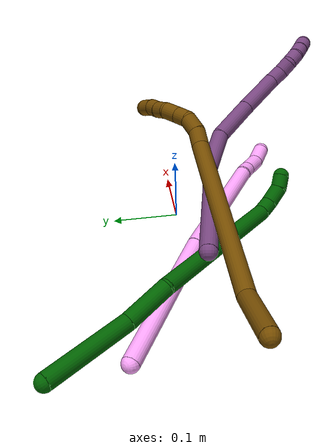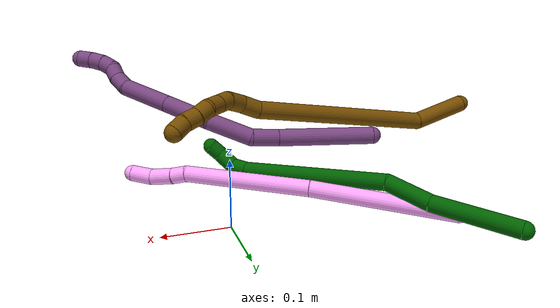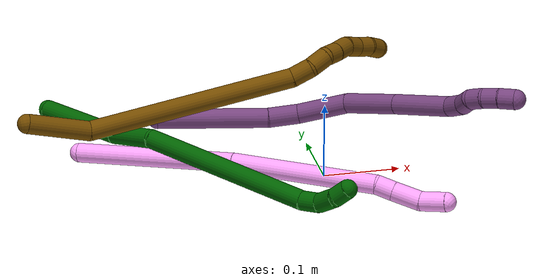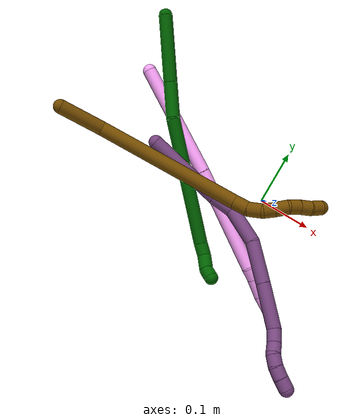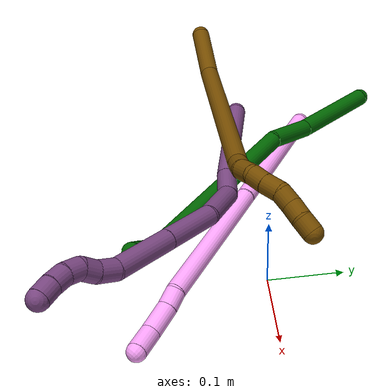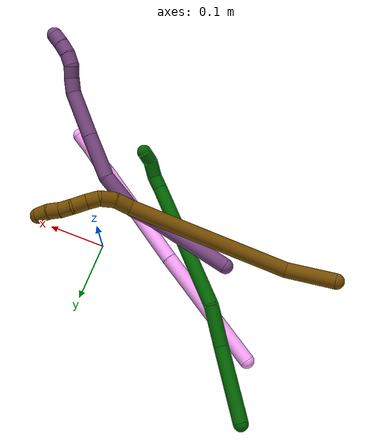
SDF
<sdf version="1.7">
 <world name="default">
  <model name="4">
   <static>0</static>
   <link name="4">
    <collision name="collision-cylinder-e_1_1_4">
     <pose>-0.041923 -0.033245 0.092179 0.346139 -0.404265 -0.071621</pose>
     <geometry><cylinder><radius>0.0125</radius><length>0.213164</length></cylinder></geometry>
     <surface>
      <friction><ode><mu>1.16</mu><mu2>1.16</mu2><slip1>0</slip1><slip2>0</slip2></ode></friction>
      <contact><ode><kp>1e+06</kp><kd>1</kd><max_vel>0</max_vel><min_depth>0.001</min_depth></ode></contact>
     </surface>
    </collision>
    <visual name="visual-cylinder-e_1_1_4">
     <pose>-0.041923 -0.033245 0.092179 0.346139 -0.404265 -0.071621</pose>
     <geometry><cylinder><radius>0.0125</radius><length>0.213164</length></cylinder></geometry>
     <material><ambient>1 0.65098 0.996078 1</ambient></material>
    </visual>
    <collision name="collision-cylinder-e_2_4_5">
     <pose>-0.116999 -0.091418 0.271754 0.277841 -0.349784 -0.049402</pose>
     <geometry><cylinder><radius>0.0125</radius><length>0.19348</length></cylinder></geometry>
     <surface>
      <friction><ode><mu>1.16</mu><mu2>1.16</mu2><slip1>0</slip1><slip2>0</slip2></ode></friction>
      <contact><ode><kp>1e+06</kp><kd>1</kd><max_vel>0</max_vel><min_depth>0.001</min_depth></ode></contact>
     </surface>
    </collision>
    <visual name="visual-cylinder-e_2_4_5">
     <pose>-0.116999 -0.091418 0.271754 0.277841 -0.349784 -0.049402</pose>
     <geometry><cylinder><radius>0.0125</radius><length>0.19348</length></cylinder></geometry>
     <material><ambient>1 0.65098 0.996078 1</ambient></material>
    </visual>
    <collision name="collision-cylinder-e_3_5_6">
     <pose>-0.153729 -0.116319 0.370158 -0.002324 -0.314303 0.000368</pose>
     <geometry><cylinder><radius>0.0125</radius><length>0.023148</length></cylinder></geometry>
     <surface>
      <friction><ode><mu>1.16</mu><mu2>1.16</mu2><slip1>0</slip1><slip2>0</slip2></ode></friction>
      <contact><ode><kp>1e+06</kp><kd>1</kd><max_vel>0</max_vel><min_depth>0.001</min_depth></ode></contact>
     </surface>
    </collision>
    <visual name="visual-cylinder-e_3_5_6">
     <pose>-0.153729 -0.116319 0.370158 -0.002324 -0.314303 0.000368</pose>
     <geometry><cylinder><radius>0.0125</radius><length>0.023148</length></cylinder></geometry>
     <material><ambient>1 0.65098 0.996078 1</ambient></material>
    </visual>
    <collision name="collision-cylinder-e_4_6_7">
     <pose>-0.161975 -0.11807 0.399037 0.099068 -0.254277 -0.012674</pose>
     <geometry><cylinder><radius>0.0125</radius><length>0.037115</length></cylinder></geometry>
     <surface>
      <friction><ode><mu>1.16</mu><mu2>1.16</mu2><slip1>0</slip1><slip2>0</slip2></ode></friction>
      <contact><ode><kp>1e+06</kp><kd>1</kd><max_vel>0</max_vel><min_depth>0.001</min_depth></ode></contact>
     </surface>
    </collision>
    <visual name="visual-cylinder-e_4_6_7">
     <pose>-0.161975 -0.11807 0.399037 0.099068 -0.254277 -0.012674</pose>
     <geometry><cylinder><radius>0.0125</radius><length>0.037115</length></cylinder></geometry>
     <material><ambient>1 0.65098 0.996078 1</ambient></material>
    </visual>
    <collision name="collision-cylinder-e_5_7_2">
     <pose>-0.173451 -0.125393 0.430935 0.376595 -0.424004 -0.081983</pose>
     <geometry><cylinder><radius>0.0125</radius><length>0.033093</length></cylinder></geometry>
     <surface>
      <friction><ode><mu>1.16</mu><mu2>1.16</mu2><slip1>0</slip1><slip2>0</slip2></ode></friction>
      <contact><ode><kp>1e+06</kp><kd>1</kd><max_vel>0</max_vel><min_depth>0.001</min_depth></ode></contact>
     </surface>
    </collision>
    <visual name="visual-cylinder-e_5_7_2">
     <pose>-0.173451 -0.125393 0.430935 0.376595 -0.424004 -0.081983</pose>
     <geometry><cylinder><radius>0.0125</radius><length>0.033093</length></cylinder></geometry>
     <material><ambient>1 0.65098 0.996078 1</ambient></material>
    </visual>
    <collision name="collision-sphere-2">
     <pose>-0.180258 -0.130939 0.444959 0 -0 0</pose>
     <geometry><sphere><radius>0.0125</radius></sphere></geometry>
     <surface>
      <friction><ode><mu>1.16</mu><mu2>1.16</mu2><slip1>0</slip1><slip2>0</slip2></ode></friction>
      <contact><ode><kp>1e+06</kp><kd>1</kd><max_vel>0</max_vel><min_depth>0.001</min_depth></ode></contact>
     </surface>
    </collision>
    <visual name="visual-sphere-2">
     <pose>-0.180258 -0.130939 0.444959 0 -0 0</pose>
     <geometry><sphere><radius>0.0125</radius></sphere></geometry>
     <material><ambient>1 0.65098 0.996078 1</ambient></material>
    </visual>
    <collision name="collision-sphere-7">
     <pose>-0.166644 -0.119846 0.41691 0 -0 0</pose>
     <geometry><sphere><radius>0.0125</radius></sphere></geometry>
     <surface>
      <friction><ode><mu>1.16</mu><mu2>1.16</mu2><slip1>0</slip1><slip2>0</slip2></ode></friction>
      <contact><ode><kp>1e+06</kp><kd>1</kd><max_vel>0</max_vel><min_depth>0.001</min_depth></ode></contact>
     </surface>
    </collision>
    <visual name="visual-sphere-7">
     <pose>-0.166644 -0.119846 0.41691 0 -0 0</pose>
     <geometry><sphere><radius>0.0125</radius></sphere></geometry>
     <material><ambient>1 0.65098 0.996078 1</ambient></material>
    </visual>
    <collision name="collision-sphere-6">
     <pose>-0.157307 -0.116293 0.381165 0 -0 0</pose>
     <geometry><sphere><radius>0.0125</radius></sphere></geometry>
     <surface>
      <friction><ode><mu>1.16</mu><mu2>1.16</mu2><slip1>0</slip1><slip2>0</slip2></ode></friction>
      <contact><ode><kp>1e+06</kp><kd>1</kd><max_vel>0</max_vel><min_depth>0.001</min_depth></ode></contact>
     </surface>
    </collision>
    <visual name="visual-sphere-6">
     <pose>-0.157307 -0.116293 0.381165 0 -0 0</pose>
     <geometry><sphere><radius>0.0125</radius></sphere></geometry>
     <material><ambient>1 0.65098 0.996078 1</ambient></material>
    </visual>
    <collision name="collision-sphere-5">
     <pose>-0.150151 -0.116345 0.359151 0 -0 0</pose>
     <geometry><sphere><radius>0.0125</radius></sphere></geometry>
     <surface>
      <friction><ode><mu>1.16</mu><mu2>1.16</mu2><slip1>0</slip1><slip2>0</slip2></ode></friction>
      <contact><ode><kp>1e+06</kp><kd>1</kd><max_vel>0</max_vel><min_depth>0.001</min_depth></ode></contact>
     </surface>
    </collision>
    <visual name="visual-sphere-5">
     <pose>-0.150151 -0.116345 0.359151 0 -0 0</pose>
     <geometry><sphere><radius>0.0125</radius></sphere></geometry>
     <material><ambient>1 0.65098 0.996078 1</ambient></material>
    </visual>
    <collision name="collision-sphere-1">
     <geometry><sphere><radius>0.0125</radius></sphere></geometry>
     <surface>
      <friction><ode><mu>1.16</mu><mu2>1.16</mu2><slip1>0</slip1><slip2>0</slip2></ode></friction>
      <contact><ode><kp>1e+06</kp><kd>1</kd><max_vel>0</max_vel><min_depth>0.001</min_depth></ode></contact>
     </surface>
    </collision>
    <visual name="visual-sphere-1">
     <geometry><sphere><radius>0.0125</radius></sphere></geometry>
     <material><ambient>1 0.65098 0.996078 1</ambient></material>
    </visual>
    <collision name="collision-sphere-4">
     <pose>-0.083847 -0.06649 0.184358 0 -0 0</pose>
     <geometry><sphere><radius>0.0125</radius></sphere></geometry>
     <surface>
      <friction><ode><mu>1.16</mu><mu2>1.16</mu2><slip1>0</slip1><slip2>0</slip2></ode></friction>
      <contact><ode><kp>1e+06</kp><kd>1</kd><max_vel>0</max_vel><min_depth>0.001</min_depth></ode></contact>
     </surface>
    </collision>
    <visual name="visual-sphere-4">
     <pose>-0.083847 -0.06649 0.184358 0 -0 0</pose>
     <geometry><sphere><radius>0.0125</radius></sphere></geometry>
     <material><ambient>1 0.65098 0.996078 1</ambient></material>
    </visual>
    <inertial>
     <pose>-0.093767 -0.071997 0.219736 0 -0 0</pose>
     <mass>0.5</mass>
     <inertia>
      <ixx>0.001236</ixx>
      <ixy>0</ixy>
      <ixz>0</ixz>
      <iyy>0.001282</iyy>
      <iyz>0</iyz>
      <izz>0.000983</izz>
     </inertia>
    </inertial>
   </link>
   <pose>-0.302845 0.099861 0.018682 -1.90538 0.20326 -2.51459</pose>
  </model>
  <model name="6">
   <static>0</static>
   <link name="6">
    <collision name="collision-cylinder-e_1_1_4">
     <pose>0.046332 -0.025432 -0.033207 2.48802 0.836451 1.83855</pose>
     <geometry><cylinder><radius>0.0125</radius><length>0.124838</length></cylinder></geometry>
     <surface>
      <friction><ode><mu>1.16</mu><mu2>1.16</mu2><slip1>0</slip1><slip2>0</slip2></ode></friction>
      <contact><ode><kp>1e+06</kp><kd>1</kd><max_vel>0</max_vel><min_depth>0.001</min_depth></ode></contact>
     </surface>
    </collision>
    <visual name="visual-cylinder-e_1_1_4">
     <pose>0.046332 -0.025432 -0.033207 2.48802 0.836451 1.83855</pose>
     <geometry><cylinder><radius>0.0125</radius><length>0.124838</length></cylinder></geometry>
     <material><ambient>0 0.392157 0.003922 1</ambient></material>
    </visual>
    <collision name="collision-cylinder-e_2_4_5">
     <pose>0.113178 -0.067398 -0.087817 2.48383 0.648942 1.55628</pose>
     <geometry><cylinder><radius>0.0125</radius><length>0.06789</length></cylinder></geometry>
     <surface>
      <friction><ode><mu>1.16</mu><mu2>1.16</mu2><slip1>0</slip1><slip2>0</slip2></ode></friction>
      <contact><ode><kp>1e+06</kp><kd>1</kd><max_vel>0</max_vel><min_depth>0.001</min_depth></ode></contact>
     </surface>
    </collision>
    <visual name="visual-cylinder-e_2_4_5">
     <pose>0.113178 -0.067398 -0.087817 2.48383 0.648942 1.55628</pose>
     <geometry><cylinder><radius>0.0125</radius><length>0.06789</length></cylinder></geometry>
     <material><ambient>0 0.392157 0.003922 1</ambient></material>
    </visual>
    <collision name="collision-cylinder-e_3_5_6">
     <pose>0.228653 -0.137215 -0.151201 2.23812 0.950504 1.62958</pose>
     <geometry><cylinder><radius>0.0125</radius><length>0.233403</length></cylinder></geometry>
     <surface>
      <friction><ode><mu>1.16</mu><mu2>1.16</mu2><slip1>0</slip1><slip2>0</slip2></ode></friction>
      <contact><ode><kp>1e+06</kp><kd>1</kd><max_vel>0</max_vel><min_depth>0.001</min_depth></ode></contact>
     </surface>
    </collision>
    <visual name="visual-cylinder-e_3_5_6">
     <pose>0.228653 -0.137215 -0.151201 2.23812 0.950504 1.62958</pose>
     <geometry><cylinder><radius>0.0125</radius><length>0.233403</length></cylinder></geometry>
     <material><ambient>0 0.392157 0.003922 1</ambient></material>
    </visual>
    <collision name="collision-cylinder-e_4_6_7">
     <pose>0.331805 -0.19782 -0.198662 2.21322 0.730461 1.30448</pose>
     <geometry><cylinder><radius>0.0125</radius><length>0.024553</length></cylinder></geometry>
     <surface>
      <friction><ode><mu>1.16</mu><mu2>1.16</mu2><slip1>0</slip1><slip2>0</slip2></ode></friction>
      <contact><ode><kp>1e+06</kp><kd>1</kd><max_vel>0</max_vel><min_depth>0.001</min_depth></ode></contact>
     </surface>
    </collision>
    <visual name="visual-cylinder-e_4_6_7">
     <pose>0.331805 -0.19782 -0.198662 2.21322 0.730461 1.30448</pose>
     <geometry><cylinder><radius>0.0125</radius><length>0.024553</length></cylinder></geometry>
     <material><ambient>0 0.392157 0.003922 1</ambient></material>
    </visual>
    <collision name="collision-cylinder-e_5_7_8">
     <pose>0.344359 -0.214117 -0.214551 2.43002 0.307332 0.789828</pose>
     <geometry><cylinder><radius>0.0125</radius><length>0.028841</length></cylinder></geometry>
     <surface>
      <friction><ode><mu>1.16</mu><mu2>1.16</mu2><slip1>0</slip1><slip2>0</slip2></ode></friction>
      <contact><ode><kp>1e+06</kp><kd>1</kd><max_vel>0</max_vel><min_depth>0.001</min_depth></ode></contact>
     </surface>
    </collision>
    <visual name="visual-cylinder-e_5_7_8">
     <pose>0.344359 -0.214117 -0.214551 2.43002 0.307332 0.789828</pose>
     <geometry><cylinder><radius>0.0125</radius><length>0.028841</length></cylinder></geometry>
     <material><ambient>0 0.392157 0.003922 1</ambient></material>
    </visual>
    <collision name="collision-cylinder-e_6_8_2">
     <pose>0.349591 -0.231832 -0.23022 2.11258 0.085096 0.150341</pose>
     <geometry><cylinder><radius>0.0125</radius><length>0.020475</length></cylinder></geometry>
     <surface>
      <friction><ode><mu>1.16</mu><mu2>1.16</mu2><slip1>0</slip1><slip2>0</slip2></ode></friction>
      <contact><ode><kp>1e+06</kp><kd>1</kd><max_vel>0</max_vel><min_depth>0.001</min_depth></ode></contact>
     </surface>
    </collision>
    <visual name="visual-cylinder-e_6_8_2">
     <pose>0.349591 -0.231832 -0.23022 2.11258 0.085096 0.150341</pose>
     <geometry><cylinder><radius>0.0125</radius><length>0.020475</length></cylinder></geometry>
     <material><ambient>0 0.392157 0.003922 1</ambient></material>
    </visual>
    <collision name="collision-sphere-2">
     <pose>0.350462 -0.240572 -0.23548 0 -0 0</pose>
     <geometry><sphere><radius>0.0125</radius></sphere></geometry>
     <surface>
      <friction><ode><mu>1.16</mu><mu2>1.16</mu2><slip1>0</slip1><slip2>0</slip2></ode></friction>
      <contact><ode><kp>1e+06</kp><kd>1</kd><max_vel>0</max_vel><min_depth>0.001</min_depth></ode></contact>
     </surface>
    </collision>
    <visual name="visual-sphere-2">
     <pose>0.350462 -0.240572 -0.23548 0 -0 0</pose>
     <geometry><sphere><radius>0.0125</radius></sphere></geometry>
     <material><ambient>0 0.392157 0.003922 1</ambient></material>
    </visual>
    <collision name="collision-sphere-4">
     <pose>0.092663 -0.050864 -0.066414 0 -0 0</pose>
     <geometry><sphere><radius>0.0125</radius></sphere></geometry>
     <surface>
      <friction><ode><mu>1.16</mu><mu2>1.16</mu2><slip1>0</slip1><slip2>0</slip2></ode></friction>
      <contact><ode><kp>1e+06</kp><kd>1</kd><max_vel>0</max_vel><min_depth>0.001</min_depth></ode></contact>
     </surface>
    </collision>
    <visual name="visual-sphere-4">
     <pose>0.092663 -0.050864 -0.066414 0 -0 0</pose>
     <geometry><sphere><radius>0.0125</radius></sphere></geometry>
     <material><ambient>0 0.392157 0.003922 1</ambient></material>
    </visual>
    <collision name="collision-sphere-1">
     <geometry><sphere><radius>0.0125</radius></sphere></geometry>
     <surface>
      <friction><ode><mu>1.16</mu><mu2>1.16</mu2><slip1>0</slip1><slip2>0</slip2></ode></friction>
      <contact><ode><kp>1e+06</kp><kd>1</kd><max_vel>0</max_vel><min_depth>0.001</min_depth></ode></contact>
     </surface>
    </collision>
    <visual name="visual-sphere-1">
     <geometry><sphere><radius>0.0125</radius></sphere></geometry>
     <material><ambient>0 0.392157 0.003922 1</ambient></material>
    </visual>
    <collision name="collision-sphere-8">
     <pose>0.348721 -0.223093 -0.22496 0 -0 0</pose>
     <geometry><sphere><radius>0.0125</radius></sphere></geometry>
     <surface>
      <friction><ode><mu>1.16</mu><mu2>1.16</mu2><slip1>0</slip1><slip2>0</slip2></ode></friction>
      <contact><ode><kp>1e+06</kp><kd>1</kd><max_vel>0</max_vel><min_depth>0.001</min_depth></ode></contact>
     </surface>
    </collision>
    <visual name="visual-sphere-8">
     <pose>0.348721 -0.223093 -0.22496 0 -0 0</pose>
     <geometry><sphere><radius>0.0125</radius></sphere></geometry>
     <material><ambient>0 0.392157 0.003922 1</ambient></material>
    </visual>
    <collision name="collision-sphere-5">
     <pose>0.133692 -0.083931 -0.109219 0 -0 0</pose>
     <geometry><sphere><radius>0.0125</radius></sphere></geometry>
     <surface>
      <friction><ode><mu>1.16</mu><mu2>1.16</mu2><slip1>0</slip1><slip2>0</slip2></ode></friction>
      <contact><ode><kp>1e+06</kp><kd>1</kd><max_vel>0</max_vel><min_depth>0.001</min_depth></ode></contact>
     </surface>
    </collision>
    <visual name="visual-sphere-5">
     <pose>0.133692 -0.083931 -0.109219 0 -0 0</pose>
     <geometry><sphere><radius>0.0125</radius></sphere></geometry>
     <material><ambient>0 0.392157 0.003922 1</ambient></material>
    </visual>
    <collision name="collision-sphere-6">
     <pose>0.323614 -0.190498 -0.193184 0 -0 0</pose>
     <geometry><sphere><radius>0.0125</radius></sphere></geometry>
     <surface>
      <friction><ode><mu>1.16</mu><mu2>1.16</mu2><slip1>0</slip1><slip2>0</slip2></ode></friction>
      <contact><ode><kp>1e+06</kp><kd>1</kd><max_vel>0</max_vel><min_depth>0.001</min_depth></ode></contact>
     </surface>
    </collision>
    <visual name="visual-sphere-6">
     <pose>0.323614 -0.190498 -0.193184 0 -0 0</pose>
     <geometry><sphere><radius>0.0125</radius></sphere></geometry>
     <material><ambient>0 0.392157 0.003922 1</ambient></material>
    </visual>
    <collision name="collision-sphere-7">
     <pose>0.339996 -0.205141 -0.204141 0 -0 0</pose>
     <geometry><sphere><radius>0.0125</radius></sphere></geometry>
     <surface>
      <friction><ode><mu>1.16</mu><mu2>1.16</mu2><slip1>0</slip1><slip2>0</slip2></ode></friction>
      <contact><ode><kp>1e+06</kp><kd>1</kd><max_vel>0</max_vel><min_depth>0.001</min_depth></ode></contact>
     </surface>
    </collision>
    <visual name="visual-sphere-7">
     <pose>0.339996 -0.205141 -0.204141 0 -0 0</pose>
     <geometry><sphere><radius>0.0125</radius></sphere></geometry>
     <material><ambient>0 0.392157 0.003922 1</ambient></material>
    </visual>
    <inertial>
     <pose>0.184145 -0.111112 -0.122355 0 -0 0</pose>
     <mass>0.5</mass>
     <inertia>
      <ixx>0.00072</ixx>
      <ixy>0</ixy>
      <ixz>0</ixz>
      <iyy>0.001574</iyy>
      <iyz>0</iyz>
      <izz>-0.000457</izz>
     </inertia>
    </inertial>
   </link>
   <pose>-0.327896 0.199985 0.037483 -2.49676 0.70412 -0.964867</pose>
  </model>
  <model name="12">
   <static>0</static>
   <link name="12">
    <collision name="collision-cylinder-e_1_1_4">
     <pose>0.011312 -0.010048 0.037645 0.26083 0.282555 0.037304</pose>
     <geometry><cylinder><radius>0.0125</radius><length>0.081143</length></cylinder></geometry>
     <surface>
      <friction><ode><mu>1.16</mu><mu2>1.16</mu2><slip1>0</slip1><slip2>0</slip2></ode></friction>
      <contact><ode><kp>1e+06</kp><kd>1</kd><max_vel>0</max_vel><min_depth>0.001</min_depth></ode></contact>
     </surface>
    </collision>
    <visual name="visual-cylinder-e_1_1_4">
     <pose>0.011312 -0.010048 0.037645 0.26083 0.282555 0.037304</pose>
     <geometry><cylinder><radius>0.0125</radius><length>0.081143</length></cylinder></geometry>
     <material><ambient>0.466667 0.301961 0 1</ambient></material>
    </visual>
    <collision name="collision-cylinder-e_2_4_5">
     <pose>0.028088 -0.008659 0.206543 -0.086916 0.041454 -0.001803</pose>
     <geometry><cylinder><radius>0.0125</radius><length>0.263728</length></cylinder></geometry>
     <surface>
      <friction><ode><mu>1.16</mu><mu2>1.16</mu2><slip1>0</slip1><slip2>0</slip2></ode></friction>
      <contact><ode><kp>1e+06</kp><kd>1</kd><max_vel>0</max_vel><min_depth>0.001</min_depth></ode></contact>
     </surface>
    </collision>
    <visual name="visual-cylinder-e_2_4_5">
     <pose>0.028088 -0.008659 0.206543 -0.086916 0.041454 -0.001803</pose>
     <geometry><cylinder><radius>0.0125</radius><length>0.263728</length></cylinder></geometry>
     <material><ambient>0.466667 0.301961 0 1</ambient></material>
    </visual>
    <collision name="collision-cylinder-e_3_5_6">
     <pose>0.032497 0.006843 0.350456 -0.310692 -0.079232 0.012415</pose>
     <geometry><cylinder><radius>0.0125</radius><length>0.026676</length></cylinder></geometry>
     <surface>
      <friction><ode><mu>1.16</mu><mu2>1.16</mu2><slip1>0</slip1><slip2>0</slip2></ode></friction>
      <contact><ode><kp>1e+06</kp><kd>1</kd><max_vel>0</max_vel><min_depth>0.001</min_depth></ode></contact>
     </surface>
    </collision>
    <visual name="visual-cylinder-e_3_5_6">
     <pose>0.032497 0.006843 0.350456 -0.310692 -0.079232 0.012415</pose>
     <geometry><cylinder><radius>0.0125</radius><length>0.026676</length></cylinder></geometry>
     <material><ambient>0.466667 0.301961 0 1</ambient></material>
    </visual>
    <collision name="collision-cylinder-e_4_6_7">
     <pose>0.034233 0.016584 0.374023 -0.479816 0.223204 -0.054814</pose>
     <geometry><cylinder><radius>0.0125</radius><length>0.025218</length></cylinder></geometry>
     <surface>
      <friction><ode><mu>1.16</mu><mu2>1.16</mu2><slip1>0</slip1><slip2>0</slip2></ode></friction>
      <contact><ode><kp>1e+06</kp><kd>1</kd><max_vel>0</max_vel><min_depth>0.001</min_depth></ode></contact>
     </surface>
    </collision>
    <visual name="visual-cylinder-e_4_6_7">
     <pose>0.034233 0.016584 0.374023 -0.479816 0.223204 -0.054814</pose>
     <geometry><cylinder><radius>0.0125</radius><length>0.025218</length></cylinder></geometry>
     <material><ambient>0.466667 0.301961 0 1</ambient></material>
    </visual>
    <collision name="collision-cylinder-e_5_7_8">
     <pose>0.043225 0.024585 0.392519 -0.297332 0.663269 -0.103057</pose>
     <geometry><cylinder><radius>0.0125</radius><length>0.020144</length></cylinder></geometry>
     <surface>
      <friction><ode><mu>1.16</mu><mu2>1.16</mu2><slip1>0</slip1><slip2>0</slip2></ode></friction>
      <contact><ode><kp>1e+06</kp><kd>1</kd><max_vel>0</max_vel><min_depth>0.001</min_depth></ode></contact>
     </surface>
    </collision>
    <visual name="visual-cylinder-e_5_7_8">
     <pose>0.043225 0.024585 0.392519 -0.297332 0.663269 -0.103057</pose>
     <geometry><cylinder><radius>0.0125</radius><length>0.020144</length></cylinder></geometry>
     <material><ambient>0.466667 0.301961 0 1</ambient></material>
    </visual>
    <collision name="collision-cylinder-e_6_8_9">
     <pose>0.056784 0.030263 0.408247 -0.390755 0.696167 -0.143374</pose>
     <geometry><cylinder><radius>0.0125</radius><length>0.022948</length></cylinder></geometry>
     <surface>
      <friction><ode><mu>1.16</mu><mu2>1.16</mu2><slip1>0</slip1><slip2>0</slip2></ode></friction>
      <contact><ode><kp>1e+06</kp><kd>1</kd><max_vel>0</max_vel><min_depth>0.001</min_depth></ode></contact>
     </surface>
    </collision>
    <visual name="visual-cylinder-e_6_8_9">
     <pose>0.056784 0.030263 0.408247 -0.390755 0.696167 -0.143374</pose>
     <geometry><cylinder><radius>0.0125</radius><length>0.022948</length></cylinder></geometry>
     <material><ambient>0.466667 0.301961 0 1</ambient></material>
    </visual>
    <collision name="collision-cylinder-e_7_9_10">
     <pose>0.070838 0.032901 0.423809 0.09617 0.731763 0.03687</pose>
     <geometry><cylinder><radius>0.0125</radius><length>0.020041</length></cylinder></geometry>
     <surface>
      <friction><ode><mu>1.16</mu><mu2>1.16</mu2><slip1>0</slip1><slip2>0</slip2></ode></friction>
      <contact><ode><kp>1e+06</kp><kd>1</kd><max_vel>0</max_vel><min_depth>0.001</min_depth></ode></contact>
     </surface>
    </collision>
    <visual name="visual-cylinder-e_7_9_10">
     <pose>0.070838 0.032901 0.423809 0.09617 0.731763 0.03687</pose>
     <geometry><cylinder><radius>0.0125</radius><length>0.020041</length></cylinder></geometry>
     <material><ambient>0.466667 0.301961 0 1</ambient></material>
    </visual>
    <collision name="collision-cylinder-e_8_10_11">
     <pose>0.082996 0.031698 0.439618 0.057921 0.576495 0.017178</pose>
     <geometry><cylinder><radius>0.0125</radius><length>0.020045</length></cylinder></geometry>
     <surface>
      <friction><ode><mu>1.16</mu><mu2>1.16</mu2><slip1>0</slip1><slip2>0</slip2></ode></friction>
      <contact><ode><kp>1e+06</kp><kd>1</kd><max_vel>0</max_vel><min_depth>0.001</min_depth></ode></contact>
     </surface>
    </collision>
    <visual name="visual-cylinder-e_8_10_11">
     <pose>0.082996 0.031698 0.439618 0.057921 0.576495 0.017178</pose>
     <geometry><cylinder><radius>0.0125</radius><length>0.020045</length></cylinder></geometry>
     <material><ambient>0.466667 0.301961 0 1</ambient></material>
    </visual>
    <collision name="collision-cylinder-e_9_11_2">
     <pose>0.095706 0.029827 0.4548 0.201114 0.807477 0.086155</pose>
     <geometry><cylinder><radius>0.0125</radius><length>0.020058</length></cylinder></geometry>
     <surface>
      <friction><ode><mu>1.16</mu><mu2>1.16</mu2><slip1>0</slip1><slip2>0</slip2></ode></friction>
      <contact><ode><kp>1e+06</kp><kd>1</kd><max_vel>0</max_vel><min_depth>0.001</min_depth></ode></contact>
     </surface>
    </collision>
    <visual name="visual-cylinder-e_9_11_2">
     <pose>0.095706 0.029827 0.4548 0.201114 0.807477 0.086155</pose>
     <geometry><cylinder><radius>0.0125</radius><length>0.020058</length></cylinder></geometry>
     <material><ambient>0.466667 0.301961 0 1</ambient></material>
    </visual>
    <collision name="collision-sphere-2">
     <pose>0.102952 0.028442 0.461593 0 -0 0</pose>
     <geometry><sphere><radius>0.0125</radius></sphere></geometry>
     <surface>
      <friction><ode><mu>1.16</mu><mu2>1.16</mu2><slip1>0</slip1><slip2>0</slip2></ode></friction>
      <contact><ode><kp>1e+06</kp><kd>1</kd><max_vel>0</max_vel><min_depth>0.001</min_depth></ode></contact>
     </surface>
    </collision>
    <visual name="visual-sphere-2">
     <pose>0.102952 0.028442 0.461593 0 -0 0</pose>
     <geometry><sphere><radius>0.0125</radius></sphere></geometry>
     <material><ambient>0.466667 0.301961 0 1</ambient></material>
    </visual>
    <collision name="collision-sphere-11">
     <pose>0.088459 0.031212 0.448006 0 -0 0</pose>
     <geometry><sphere><radius>0.0125</radius></sphere></geometry>
     <surface>
      <friction><ode><mu>1.16</mu><mu2>1.16</mu2><slip1>0</slip1><slip2>0</slip2></ode></friction>
      <contact><ode><kp>1e+06</kp><kd>1</kd><max_vel>0</max_vel><min_depth>0.001</min_depth></ode></contact>
     </surface>
    </collision>
    <visual name="visual-sphere-11">
     <pose>0.088459 0.031212 0.448006 0 -0 0</pose>
     <geometry><sphere><radius>0.0125</radius></sphere></geometry>
     <material><ambient>0.466667 0.301961 0 1</ambient></material>
    </visual>
    <collision name="collision-sphere-10">
     <pose>0.077533 0.032185 0.431229 0 -0 0</pose>
     <geometry><sphere><radius>0.0125</radius></sphere></geometry>
     <surface>
      <friction><ode><mu>1.16</mu><mu2>1.16</mu2><slip1>0</slip1><slip2>0</slip2></ode></friction>
      <contact><ode><kp>1e+06</kp><kd>1</kd><max_vel>0</max_vel><min_depth>0.001</min_depth></ode></contact>
     </surface>
    </collision>
    <visual name="visual-sphere-10">
     <pose>0.077533 0.032185 0.431229 0 -0 0</pose>
     <geometry><sphere><radius>0.0125</radius></sphere></geometry>
     <material><ambient>0.466667 0.301961 0 1</ambient></material>
    </visual>
    <collision name="collision-sphere-9">
     <pose>0.064142 0.033617 0.416388 0 -0 0</pose>
     <geometry><sphere><radius>0.0125</radius></sphere></geometry>
     <surface>
      <friction><ode><mu>1.16</mu><mu2>1.16</mu2><slip1>0</slip1><slip2>0</slip2></ode></friction>
      <contact><ode><kp>1e+06</kp><kd>1</kd><max_vel>0</max_vel><min_depth>0.001</min_depth></ode></contact>
     </surface>
    </collision>
    <visual name="visual-sphere-9">
     <pose>0.064142 0.033617 0.416388 0 -0 0</pose>
     <geometry><sphere><radius>0.0125</radius></sphere></geometry>
     <material><ambient>0.466667 0.301961 0 1</ambient></material>
    </visual>
    <collision name="collision-sphere-4">
     <pose>0.022624 -0.020096 0.07529 0 -0 0</pose>
     <geometry><sphere><radius>0.0125</radius></sphere></geometry>
     <surface>
      <friction><ode><mu>1.16</mu><mu2>1.16</mu2><slip1>0</slip1><slip2>0</slip2></ode></friction>
      <contact><ode><kp>1e+06</kp><kd>1</kd><max_vel>0</max_vel><min_depth>0.001</min_depth></ode></contact>
     </surface>
    </collision>
    <visual name="visual-sphere-4">
     <pose>0.022624 -0.020096 0.07529 0 -0 0</pose>
     <geometry><sphere><radius>0.0125</radius></sphere></geometry>
     <material><ambient>0.466667 0.301961 0 1</ambient></material>
    </visual>
    <collision name="collision-sphere-1">
     <geometry><sphere><radius>0.0125</radius></sphere></geometry>
     <surface>
      <friction><ode><mu>1.16</mu><mu2>1.16</mu2><slip1>0</slip1><slip2>0</slip2></ode></friction>
      <contact><ode><kp>1e+06</kp><kd>1</kd><max_vel>0</max_vel><min_depth>0.001</min_depth></ode></contact>
     </surface>
    </collision>
    <visual name="visual-sphere-1">
     <geometry><sphere><radius>0.0125</radius></sphere></geometry>
     <material><ambient>0.466667 0.301961 0 1</ambient></material>
    </visual>
    <collision name="collision-sphere-8">
     <pose>0.049426 0.02691 0.400107 0 -0 0</pose>
     <geometry><sphere><radius>0.0125</radius></sphere></geometry>
     <surface>
      <friction><ode><mu>1.16</mu><mu2>1.16</mu2><slip1>0</slip1><slip2>0</slip2></ode></friction>
      <contact><ode><kp>1e+06</kp><kd>1</kd><max_vel>0</max_vel><min_depth>0.001</min_depth></ode></contact>
     </surface>
    </collision>
    <visual name="visual-sphere-8">
     <pose>0.049426 0.02691 0.400107 0 -0 0</pose>
     <geometry><sphere><radius>0.0125</radius></sphere></geometry>
     <material><ambient>0.466667 0.301961 0 1</ambient></material>
    </visual>
    <collision name="collision-sphere-5">
     <pose>0.033553 0.002778 0.337796 0 -0 0</pose>
     <geometry><sphere><radius>0.0125</radius></sphere></geometry>
     <surface>
      <friction><ode><mu>1.16</mu><mu2>1.16</mu2><slip1>0</slip1><slip2>0</slip2></ode></friction>
      <contact><ode><kp>1e+06</kp><kd>1</kd><max_vel>0</max_vel><min_depth>0.001</min_depth></ode></contact>
     </surface>
    </collision>
    <visual name="visual-sphere-5">
     <pose>0.033553 0.002778 0.337796 0 -0 0</pose>
     <geometry><sphere><radius>0.0125</radius></sphere></geometry>
     <material><ambient>0.466667 0.301961 0 1</ambient></material>
    </visual>
    <collision name="collision-sphere-6">
     <pose>0.031442 0.010907 0.363115 0 -0 0</pose>
     <geometry><sphere><radius>0.0125</radius></sphere></geometry>
     <surface>
      <friction><ode><mu>1.16</mu><mu2>1.16</mu2><slip1>0</slip1><slip2>0</slip2></ode></friction>
      <contact><ode><kp>1e+06</kp><kd>1</kd><max_vel>0</max_vel><min_depth>0.001</min_depth></ode></contact>
     </surface>
    </collision>
    <visual name="visual-sphere-6">
     <pose>0.031442 0.010907 0.363115 0 -0 0</pose>
     <geometry><sphere><radius>0.0125</radius></sphere></geometry>
     <material><ambient>0.466667 0.301961 0 1</ambient></material>
    </visual>
    <collision name="collision-sphere-7">
     <pose>0.037024 0.02226 0.38493 0 -0 0</pose>
     <geometry><sphere><radius>0.0125</radius></sphere></geometry>
     <surface>
      <friction><ode><mu>1.16</mu><mu2>1.16</mu2><slip1>0</slip1><slip2>0</slip2></ode></friction>
      <contact><ode><kp>1e+06</kp><kd>1</kd><max_vel>0</max_vel><min_depth>0.001</min_depth></ode></contact>
     </surface>
    </collision>
    <visual name="visual-sphere-7">
     <pose>0.037024 0.02226 0.38493 0 -0 0</pose>
     <geometry><sphere><radius>0.0125</radius></sphere></geometry>
     <material><ambient>0.466667 0.301961 0 1</ambient></material>
    </visual>
    <inertial>
     <pose>0.034465 0.001169 0.240019 0 -0 0</pose>
     <mass>0.5</mass>
     <inertia>
      <ixx>0.001601</ixx>
      <ixy>0</ixy>
      <ixz>0</ixz>
      <iyy>0.001592</iyy>
      <iyz>0</iyz>
      <izz>-0.00017</izz>
     </inertia>
    </inertial>
   </link>
   <pose>-0.388554 -0.042912 0.134999 1.43666 0.550363 1.44753</pose>
  </model>
  <model name="20">
   <static>0</static>
   <link name="20">
    <collision name="collision-cylinder-e_1_1_4">
     <pose>0.0386 0.023741 0.052794 -0.422608 0.58811 -0.129737</pose>
     <geometry><cylinder><radius>0.0125</radius><length>0.139151</length></cylinder></geometry>
     <surface>
      <friction><ode><mu>1.16</mu><mu2>1.16</mu2><slip1>0</slip1><slip2>0</slip2></ode></friction>
      <contact><ode><kp>1e+06</kp><kd>1</kd><max_vel>0</max_vel><min_depth>0.001</min_depth></ode></contact>
     </surface>
    </collision>
    <visual name="visual-cylinder-e_1_1_4">
     <pose>0.0386 0.023741 0.052794 -0.422608 0.58811 -0.129737</pose>
     <geometry><cylinder><radius>0.0125</radius><length>0.139151</length></cylinder></geometry>
     <material><ambient>0.478431 0.278431 0.509804 1</ambient></material>
    </visual>
    <collision name="collision-cylinder-e_2_4_5">
     <pose>0.085591 0.055398 0.121317 -0.466165 0.444716 -0.107247</pose>
     <geometry><cylinder><radius>0.0125</radius><length>0.039013</length></cylinder></geometry>
     <surface>
      <friction><ode><mu>1.16</mu><mu2>1.16</mu2><slip1>0</slip1><slip2>0</slip2></ode></friction>
      <contact><ode><kp>1e+06</kp><kd>1</kd><max_vel>0</max_vel><min_depth>0.001</min_depth></ode></contact>
     </surface>
    </collision>
    <visual name="visual-cylinder-e_2_4_5">
     <pose>0.085591 0.055398 0.121317 -0.466165 0.444716 -0.107247</pose>
     <geometry><cylinder><radius>0.0125</radius><length>0.039013</length></cylinder></geometry>
     <material><ambient>0.478431 0.278431 0.509804 1</ambient></material>
    </visual>
    <collision name="collision-cylinder-e_3_5_6">
     <pose>0.109199 0.062302 0.166641 0.034107 0.474659 0.008251</pose>
     <geometry><cylinder><radius>0.0125</radius><length>0.066584</length></cylinder></geometry>
     <surface>
      <friction><ode><mu>1.16</mu><mu2>1.16</mu2><slip1>0</slip1><slip2>0</slip2></ode></friction>
      <contact><ode><kp>1e+06</kp><kd>1</kd><max_vel>0</max_vel><min_depth>0.001</min_depth></ode></contact>
     </surface>
    </collision>
    <visual name="visual-cylinder-e_3_5_6">
     <pose>0.109199 0.062302 0.166641 0.034107 0.474659 0.008251</pose>
     <geometry><cylinder><radius>0.0125</radius><length>0.066584</length></cylinder></geometry>
     <material><ambient>0.478431 0.278431 0.509804 1</ambient></material>
    </visual>
    <collision name="collision-cylinder-e_4_6_7">
     <pose>0.147516 0.051953 0.222775 0.338393 0.687478 0.122145</pose>
     <geometry><cylinder><radius>0.0125</radius><length>0.072808</length></cylinder></geometry>
     <surface>
      <friction><ode><mu>1.16</mu><mu2>1.16</mu2><slip1>0</slip1><slip2>0</slip2></ode></friction>
      <contact><ode><kp>1e+06</kp><kd>1</kd><max_vel>0</max_vel><min_depth>0.001</min_depth></ode></contact>
     </surface>
    </collision>
    <visual name="visual-cylinder-e_4_6_7">
     <pose>0.147516 0.051953 0.222775 0.338393 0.687478 0.122145</pose>
     <geometry><cylinder><radius>0.0125</radius><length>0.072808</length></cylinder></geometry>
     <material><ambient>0.478431 0.278431 0.509804 1</ambient></material>
    </visual>
    <collision name="collision-cylinder-e_5_7_8">
     <pose>0.195889 0.03232 0.277127 0.354445 0.705739 0.13173</pose>
     <geometry><cylinder><radius>0.0125</radius><length>0.077927</length></cylinder></geometry>
     <surface>
      <friction><ode><mu>1.16</mu><mu2>1.16</mu2><slip1>0</slip1><slip2>0</slip2></ode></friction>
      <contact><ode><kp>1e+06</kp><kd>1</kd><max_vel>0</max_vel><min_depth>0.001</min_depth></ode></contact>
     </surface>
    </collision>
    <visual name="visual-cylinder-e_5_7_8">
     <pose>0.195889 0.03232 0.277127 0.354445 0.705739 0.13173</pose>
     <geometry><cylinder><radius>0.0125</radius><length>0.077927</length></cylinder></geometry>
     <material><ambient>0.478431 0.278431 0.509804 1</ambient></material>
    </visual>
    <collision name="collision-cylinder-e_6_8_9">
     <pose>0.227031 0.015296 0.313336 0.675805 0.499417 0.178748</pose>
     <geometry><cylinder><radius>0.0125</radius><length>0.024515</length></cylinder></geometry>
     <surface>
      <friction><ode><mu>1.16</mu><mu2>1.16</mu2><slip1>0</slip1><slip2>0</slip2></ode></friction>
      <contact><ode><kp>1e+06</kp><kd>1</kd><max_vel>0</max_vel><min_depth>0.001</min_depth></ode></contact>
     </surface>
    </collision>
    <visual name="visual-cylinder-e_6_8_9">
     <pose>0.227031 0.015296 0.313336 0.675805 0.499417 0.178748</pose>
     <geometry><cylinder><radius>0.0125</radius><length>0.024515</length></cylinder></geometry>
     <material><ambient>0.478431 0.278431 0.509804 1</ambient></material>
    </visual>
    <collision name="collision-cylinder-e_7_9_10">
     <pose>0.235102 0.001622 0.328584 0.791893 0.221881 0.093066</pose>
     <geometry><cylinder><radius>0.0125</radius><length>0.020001</length></cylinder></geometry>
     <surface>
      <friction><ode><mu>1.16</mu><mu2>1.16</mu2><slip1>0</slip1><slip2>0</slip2></ode></friction>
      <contact><ode><kp>1e+06</kp><kd>1</kd><max_vel>0</max_vel><min_depth>0.001</min_depth></ode></contact>
     </surface>
    </collision>
    <visual name="visual-cylinder-e_7_9_10">
     <pose>0.235102 0.001622 0.328584 0.791893 0.221881 0.093066</pose>
     <geometry><cylinder><radius>0.0125</radius><length>0.020001</length></cylinder></geometry>
     <material><ambient>0.478431 0.278431 0.509804 1</ambient></material>
    </visual>
    <collision name="collision-cylinder-e_8_10_11">
     <pose>0.242881 -0.008779 0.342982 0.429842 0.591774 0.13289</pose>
     <geometry><cylinder><radius>0.0125</radius><length>0.02</length></cylinder></geometry>
     <surface>
      <friction><ode><mu>1.16</mu><mu2>1.16</mu2><slip1>0</slip1><slip2>0</slip2></ode></friction>
      <contact><ode><kp>1e+06</kp><kd>1</kd><max_vel>0</max_vel><min_depth>0.001</min_depth></ode></contact>
     </surface>
    </collision>
    <visual name="visual-cylinder-e_8_10_11">
     <pose>0.242881 -0.008779 0.342982 0.429842 0.591774 0.13289</pose>
     <geometry><cylinder><radius>0.0125</radius><length>0.02</length></cylinder></geometry>
     <material><ambient>0.478431 0.278431 0.509804 1</ambient></material>
    </visual>
    <collision name="collision-cylinder-e_9_11_12">
     <pose>0.254833 -0.013172 0.358175 0.121612 0.691069 0.043825</pose>
     <geometry><cylinder><radius>0.0125</radius><length>0.02</length></cylinder></geometry>
     <surface>
      <friction><ode><mu>1.16</mu><mu2>1.16</mu2><slip1>0</slip1><slip2>0</slip2></ode></friction>
      <contact><ode><kp>1e+06</kp><kd>1</kd><max_vel>0</max_vel><min_depth>0.001</min_depth></ode></contact>
     </surface>
    </collision>
    <visual name="visual-cylinder-e_9_11_12">
     <pose>0.254833 -0.013172 0.358175 0.121612 0.691069 0.043825</pose>
     <geometry><cylinder><radius>0.0125</radius><length>0.02</length></cylinder></geometry>
     <material><ambient>0.478431 0.278431 0.509804 1</ambient></material>
    </visual>
    <collision name="collision-cylinder-e_10_12_2">
     <pose>0.267951 -0.013899 0.373205 -0.028138 0.740136 -0.010917</pose>
     <geometry><cylinder><radius>0.0125</radius><length>0.020001</length></cylinder></geometry>
     <surface>
      <friction><ode><mu>1.16</mu><mu2>1.16</mu2><slip1>0</slip1><slip2>0</slip2></ode></friction>
      <contact><ode><kp>1e+06</kp><kd>1</kd><max_vel>0</max_vel><min_depth>0.001</min_depth></ode></contact>
     </surface>
    </collision>
    <visual name="visual-cylinder-e_10_12_2">
     <pose>0.267951 -0.013899 0.373205 -0.028138 0.740136 -0.010917</pose>
     <geometry><cylinder><radius>0.0125</radius><length>0.020001</length></cylinder></geometry>
     <material><ambient>0.478431 0.278431 0.509804 1</ambient></material>
    </visual>
    <collision name="collision-sphere-2">
     <pose>0.274695 -0.013692 0.380586 0 -0 0</pose>
     <geometry><sphere><radius>0.0125</radius></sphere></geometry>
     <surface>
      <friction><ode><mu>1.16</mu><mu2>1.16</mu2><slip1>0</slip1><slip2>0</slip2></ode></friction>
      <contact><ode><kp>1e+06</kp><kd>1</kd><max_vel>0</max_vel><min_depth>0.001</min_depth></ode></contact>
     </surface>
    </collision>
    <visual name="visual-sphere-2">
     <pose>0.274695 -0.013692 0.380586 0 -0 0</pose>
     <geometry><sphere><radius>0.0125</radius></sphere></geometry>
     <material><ambient>0.478431 0.278431 0.509804 1</ambient></material>
    </visual>
    <collision name="collision-sphere-12">
     <pose>0.261207 -0.014107 0.365824 0 -0 0</pose>
     <geometry><sphere><radius>0.0125</radius></sphere></geometry>
     <surface>
      <friction><ode><mu>1.16</mu><mu2>1.16</mu2><slip1>0</slip1><slip2>0</slip2></ode></friction>
      <contact><ode><kp>1e+06</kp><kd>1</kd><max_vel>0</max_vel><min_depth>0.001</min_depth></ode></contact>
     </surface>
    </collision>
    <visual name="visual-sphere-12">
     <pose>0.261207 -0.014107 0.365824 0 -0 0</pose>
     <geometry><sphere><radius>0.0125</radius></sphere></geometry>
     <material><ambient>0.478431 0.278431 0.509804 1</ambient></material>
    </visual>
    <collision name="collision-sphere-11">
     <pose>0.24846 -0.012238 0.350526 0 -0 0</pose>
     <geometry><sphere><radius>0.0125</radius></sphere></geometry>
     <surface>
      <friction><ode><mu>1.16</mu><mu2>1.16</mu2><slip1>0</slip1><slip2>0</slip2></ode></friction>
      <contact><ode><kp>1e+06</kp><kd>1</kd><max_vel>0</max_vel><min_depth>0.001</min_depth></ode></contact>
     </surface>
    </collision>
    <visual name="visual-sphere-11">
     <pose>0.24846 -0.012238 0.350526 0 -0 0</pose>
     <geometry><sphere><radius>0.0125</radius></sphere></geometry>
     <material><ambient>0.478431 0.278431 0.509804 1</ambient></material>
    </visual>
    <collision name="collision-sphere-10">
     <pose>0.237303 -0.00532 0.335437 0 -0 0</pose>
     <geometry><sphere><radius>0.0125</radius></sphere></geometry>
     <surface>
      <friction><ode><mu>1.16</mu><mu2>1.16</mu2><slip1>0</slip1><slip2>0</slip2></ode></friction>
      <contact><ode><kp>1e+06</kp><kd>1</kd><max_vel>0</max_vel><min_depth>0.001</min_depth></ode></contact>
     </surface>
    </collision>
    <visual name="visual-sphere-10">
     <pose>0.237303 -0.00532 0.335437 0 -0 0</pose>
     <geometry><sphere><radius>0.0125</radius></sphere></geometry>
     <material><ambient>0.478431 0.278431 0.509804 1</ambient></material>
    </visual>
    <collision name="collision-sphere-9">
     <pose>0.232901 0.008565 0.321731 0 -0 0</pose>
     <geometry><sphere><radius>0.0125</radius></sphere></geometry>
     <surface>
      <friction><ode><mu>1.16</mu><mu2>1.16</mu2><slip1>0</slip1><slip2>0</slip2></ode></friction>
      <contact><ode><kp>1e+06</kp><kd>1</kd><max_vel>0</max_vel><min_depth>0.001</min_depth></ode></contact>
     </surface>
    </collision>
    <visual name="visual-sphere-9">
     <pose>0.232901 0.008565 0.321731 0 -0 0</pose>
     <geometry><sphere><radius>0.0125</radius></sphere></geometry>
     <material><ambient>0.478431 0.278431 0.509804 1</ambient></material>
    </visual>
    <collision name="collision-sphere-4">
     <pose>0.0772 0.047483 0.105587 0 -0 0</pose>
     <geometry><sphere><radius>0.0125</radius></sphere></geometry>
     <surface>
      <friction><ode><mu>1.16</mu><mu2>1.16</mu2><slip1>0</slip1><slip2>0</slip2></ode></friction>
      <contact><ode><kp>1e+06</kp><kd>1</kd><max_vel>0</max_vel><min_depth>0.001</min_depth></ode></contact>
     </surface>
    </collision>
    <visual name="visual-sphere-4">
     <pose>0.0772 0.047483 0.105587 0 -0 0</pose>
     <geometry><sphere><radius>0.0125</radius></sphere></geometry>
     <material><ambient>0.478431 0.278431 0.509804 1</ambient></material>
    </visual>
    <collision name="collision-sphere-1">
     <geometry><sphere><radius>0.0125</radius></sphere></geometry>
     <surface>
      <friction><ode><mu>1.16</mu><mu2>1.16</mu2><slip1>0</slip1><slip2>0</slip2></ode></friction>
      <contact><ode><kp>1e+06</kp><kd>1</kd><max_vel>0</max_vel><min_depth>0.001</min_depth></ode></contact>
     </surface>
    </collision>
    <visual name="visual-sphere-1">
     <geometry><sphere><radius>0.0125</radius></sphere></geometry>
     <material><ambient>0.478431 0.278431 0.509804 1</ambient></material>
    </visual>
    <collision name="collision-sphere-8">
     <pose>0.221161 0.022027 0.30494 0 -0 0</pose>
     <geometry><sphere><radius>0.0125</radius></sphere></geometry>
     <surface>
      <friction><ode><mu>1.16</mu><mu2>1.16</mu2><slip1>0</slip1><slip2>0</slip2></ode></friction>
      <contact><ode><kp>1e+06</kp><kd>1</kd><max_vel>0</max_vel><min_depth>0.001</min_depth></ode></contact>
     </surface>
    </collision>
    <visual name="visual-sphere-8">
     <pose>0.221161 0.022027 0.30494 0 -0 0</pose>
     <geometry><sphere><radius>0.0125</radius></sphere></geometry>
     <material><ambient>0.478431 0.278431 0.509804 1</ambient></material>
    </visual>
    <collision name="collision-sphere-5">
     <pose>0.093983 0.063312 0.137047 0 -0 0</pose>
     <geometry><sphere><radius>0.0125</radius></sphere></geometry>
     <surface>
      <friction><ode><mu>1.16</mu><mu2>1.16</mu2><slip1>0</slip1><slip2>0</slip2></ode></friction>
      <contact><ode><kp>1e+06</kp><kd>1</kd><max_vel>0</max_vel><min_depth>0.001</min_depth></ode></contact>
     </surface>
    </collision>
    <visual name="visual-sphere-5">
     <pose>0.093983 0.063312 0.137047 0 -0 0</pose>
     <geometry><sphere><radius>0.0125</radius></sphere></geometry>
     <material><ambient>0.478431 0.278431 0.509804 1</ambient></material>
    </visual>
    <collision name="collision-sphere-6">
     <pose>0.124414 0.061293 0.196236 0 -0 0</pose>
     <geometry><sphere><radius>0.0125</radius></sphere></geometry>
     <surface>
      <friction><ode><mu>1.16</mu><mu2>1.16</mu2><slip1>0</slip1><slip2>0</slip2></ode></friction>
      <contact><ode><kp>1e+06</kp><kd>1</kd><max_vel>0</max_vel><min_depth>0.001</min_depth></ode></contact>
     </surface>
    </collision>
    <visual name="visual-sphere-6">
     <pose>0.124414 0.061293 0.196236 0 -0 0</pose>
     <geometry><sphere><radius>0.0125</radius></sphere></geometry>
     <material><ambient>0.478431 0.278431 0.509804 1</ambient></material>
    </visual>
    <collision name="collision-sphere-7">
     <pose>0.170617 0.042613 0.249314 0 -0 0</pose>
     <geometry><sphere><radius>0.0125</radius></sphere></geometry>
     <surface>
      <friction><ode><mu>1.16</mu><mu2>1.16</mu2><slip1>0</slip1><slip2>0</slip2></ode></friction>
      <contact><ode><kp>1e+06</kp><kd>1</kd><max_vel>0</max_vel><min_depth>0.001</min_depth></ode></contact>
     </surface>
    </collision>
    <visual name="visual-sphere-7">
     <pose>0.170617 0.042613 0.249314 0 -0 0</pose>
     <geometry><sphere><radius>0.0125</radius></sphere></geometry>
     <material><ambient>0.478431 0.278431 0.509804 1</ambient></material>
    </visual>
    <inertial>
     <pose>0.135136 0.03121 0.193463 0 -0 0</pose>
     <mass>0.5</mass>
     <inertia>
      <ixx>0.00029</ixx>
      <ixy>0</ixy>
      <ixz>0</ixz>
      <iyy>0.000311</iyy>
      <iyz>0</iyz>
      <izz>-0.000224</izz>
     </inertia>
    </inertial>
   </link>
   <pose>-0.219002 -0.010897 0.109371 -0.625512 0.62834 -1.0228</pose>
  </model>
 </world>
</sdf>
